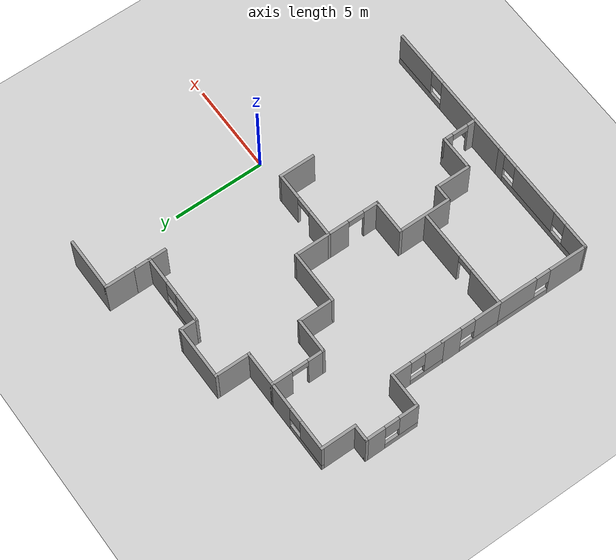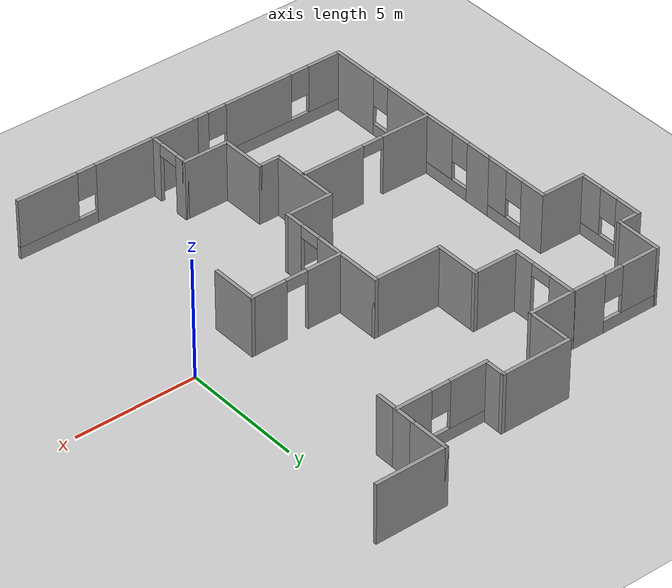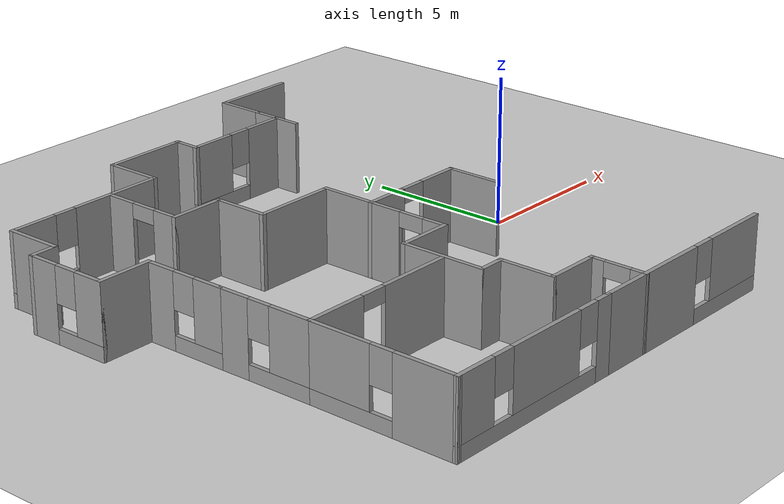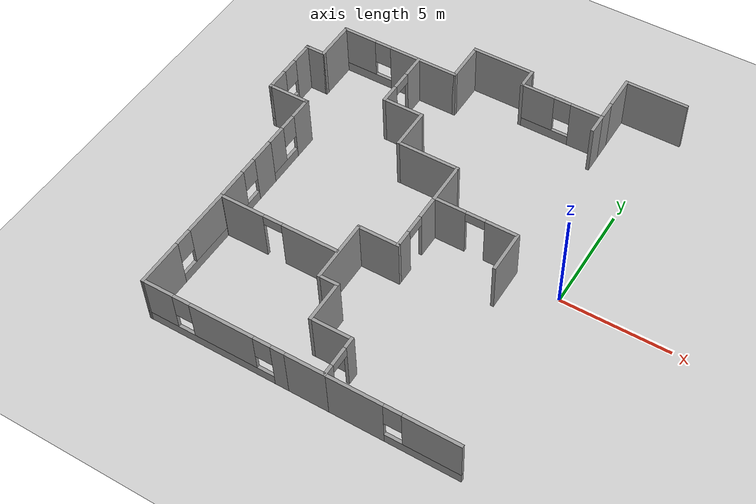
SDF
<sdf version="1.7">
 <world name="default">
  <model name="ground_plane">
   <static>1</static>
   <link name="link">
    <collision name="collision">
     <geometry><plane><normal>0 0 1</normal><size>100 100</size></plane></geometry>
     <surface><friction><ode><mu>100</mu><mu2>50</mu2></ode></friction></surface>
    </collision>
    <visual name="visual">
     <cast_shadows>0</cast_shadows>
     <geometry><plane><normal>0 0 1</normal><size>100 100</size></plane></geometry>
     <material>
      <script><uri>file://media/materials/scripts/gazebo.material</uri><name>Gazebo/Grey</name></script>
     </material>
    </visual>
   </link>
  </model>
  <model name="my_office">
   <pose>-0.02514 -0.08544 0 0 -0 0</pose>
   <link name="Wall_14">
    <collision name="Wall_14_Collision">
     <geometry><box><size>2 0.15 2.5</size></box></geometry>
     <pose>0 0 1.25 0 -0 0</pose>
    </collision>
    <visual name="Wall_14_Visual">
     <pose>0 0 1.25 0 -0 0</pose>
     <geometry><box><size>2 0.15 2.5</size></box></geometry>
     <material>
      <script><uri>file://media/materials/scripts/gazebo.material</uri><name>Gazebo/Grey</name></script>
      <ambient>1 1 1 1</ambient>
     </material>
     <meta><layer>0</layer></meta>
    </visual>
    <pose>-2.2 -0.575 0 0 -0 1.5708</pose>
   </link>
   <link name="Wall_15">
    <pose>-4.125 0.35 0 0 -0 3.14159</pose>
    <visual name="Wall_15_Visual_0">
     <pose>-1.22949 0 1.25 0 -0 0</pose>
     <geometry><box><size>1.54101 0.15 2.5</size></box></geometry>
     <material>
      <script><uri>file://media/materials/scripts/gazebo.material</uri><name>Gazebo/Grey</name></script>
      <ambient>1 1 1 1</ambient>
     </material>
     <meta><layer>0</layer></meta>
    </visual>
    <collision name="Wall_15_Collision_0">
     <geometry><box><size>1.54101 0.15 2.5</size></box></geometry>
     <pose>-1.22949 0 1.25 0 -0 0</pose>
    </collision>
    <visual name="Wall_15_Visual_1">
     <pose>1.22051 0 1.25 0 -0 0</pose>
     <geometry><box><size>1.55899 0.15 2.5</size></box></geometry>
     <material>
      <script><uri>file://media/materials/scripts/gazebo.material</uri><name>Gazebo/Grey</name></script>
      <ambient>1 1 1 1</ambient>
     </material>
     <meta><layer>0</layer></meta>
    </visual>
    <collision name="Wall_15_Collision_1">
     <geometry><box><size>1.55899 0.15 2.5</size></box></geometry>
     <pose>1.22051 0 1.25 0 -0 0</pose>
    </collision>
    <visual name="Wall_15_Visual_2">
     <pose>-0.008987 0 2.25 0 -0 0</pose>
     <geometry><box><size>0.9 0.15 0.5</size></box></geometry>
     <material>
      <script><uri>file://media/materials/scripts/gazebo.material</uri><name>Gazebo/Grey</name></script>
      <ambient>1 1 1 1</ambient>
     </material>
     <meta><layer>0</layer></meta>
    </visual>
    <collision name="Wall_15_Collision_2">
     <geometry><box><size>0.9 0.15 0.5</size></box></geometry>
     <pose>-0.008987 0 2.25 0 -0 0</pose>
    </collision>
   </link>
   <link name="Wall_16">
    <pose>-6.05 -1.075 0 0 -0 -1.5708</pose>
    <visual name="Wall_16_Visual_0">
     <pose>-0.886999 0 1.25 0 -0 0</pose>
     <geometry><box><size>1.226 0.15 2.5</size></box></geometry>
     <material>
      <script><uri>file://media/materials/scripts/gazebo.material</uri><name>Gazebo/Grey</name></script>
      <ambient>1 1 1 1</ambient>
     </material>
     <meta><layer>0</layer></meta>
    </visual>
    <collision name="Wall_16_Collision_0">
     <geometry><box><size>1.226 0.15 2.5</size></box></geometry>
     <pose>-0.886999 0 1.25 0 -0 0</pose>
    </collision>
    <visual name="Wall_16_Visual_1">
     <pose>1.063 0 1.25 0 -0 0</pose>
     <geometry><box><size>0.873997 0.15 2.5</size></box></geometry>
     <material>
      <script><uri>file://media/materials/scripts/gazebo.material</uri><name>Gazebo/Grey</name></script>
      <ambient>1 1 1 1</ambient>
     </material>
     <meta><layer>0</layer></meta>
    </visual>
    <collision name="Wall_16_Collision_1">
     <geometry><box><size>0.873997 0.15 2.5</size></box></geometry>
     <pose>1.063 0 1.25 0 -0 0</pose>
    </collision>
    <visual name="Wall_16_Visual_2">
     <pose>0.176003 0 2.25 0 -0 0</pose>
     <geometry><box><size>0.9 0.15 0.5</size></box></geometry>
     <material>
      <script><uri>file://media/materials/scripts/gazebo.material</uri><name>Gazebo/Grey</name></script>
      <ambient>1 1 1 1</ambient>
     </material>
     <meta><layer>0</layer></meta>
    </visual>
    <collision name="Wall_16_Collision_2">
     <geometry><box><size>0.9 0.15 0.5</size></box></geometry>
     <pose>0.176003 0 2.25 0 -0 0</pose>
    </collision>
   </link>
   <link name="Wall_17">
    <collision name="Wall_17_Collision">
     <geometry><box><size>2 0.15 2.5</size></box></geometry>
     <pose>0 0 1.25 0 -0 0</pose>
    </collision>
    <visual name="Wall_17_Visual">
     <pose>0 0 1.25 0 -0 0</pose>
     <geometry><box><size>2 0.15 2.5</size></box></geometry>
     <material>
      <script><uri>file://media/materials/scripts/gazebo.material</uri><name>Gazebo/Grey</name></script>
      <ambient>1 1 1 1</ambient>
     </material>
     <meta><layer>0</layer></meta>
    </visual>
    <pose>-6.975 -2.5 0 0 -0 3.14159</pose>
   </link>
   <link name="Wall_18">
    <collision name="Wall_18_Collision">
     <geometry><box><size>3 0.15 2.5</size></box></geometry>
     <pose>0 0 1.25 0 -0 0</pose>
    </collision>
    <visual name="Wall_18_Visual">
     <pose>0 0 1.25 0 -0 0</pose>
     <geometry><box><size>3 0.15 2.5</size></box></geometry>
     <material>
      <script><uri>file://media/materials/scripts/gazebo.material</uri><name>Gazebo/Grey</name></script>
      <ambient>1 1 1 1</ambient>
     </material>
     <meta><layer>0</layer></meta>
    </visual>
    <pose>-7.9 -3.925 0 0 -0 -1.5708</pose>
   </link>
   <link name="Wall_19">
    <collision name="Wall_19_Collision">
     <geometry><box><size>1 0.15 2.5</size></box></geometry>
     <pose>0 0 1.25 0 -0 0</pose>
    </collision>
    <visual name="Wall_19_Visual">
     <pose>0 0 1.25 0 -0 0</pose>
     <geometry><box><size>1 0.15 2.5</size></box></geometry>
     <material>
      <script><uri>file://media/materials/scripts/gazebo.material</uri><name>Gazebo/Grey</name></script>
      <ambient>1 1 1 1</ambient>
     </material>
     <meta><layer>0</layer></meta>
    </visual>
    <pose>-7.475 -5.35 0 0 -0 0</pose>
   </link>
   <link name="Wall_20">
    <collision name="Wall_20_Collision">
     <geometry><box><size>2 0.15 2.5</size></box></geometry>
     <pose>0 0 1.25 0 -0 0</pose>
    </collision>
    <visual name="Wall_20_Visual">
     <pose>0 0 1.25 0 -0 0</pose>
     <geometry><box><size>2 0.15 2.5</size></box></geometry>
     <material>
      <script><uri>file://media/materials/scripts/gazebo.material</uri><name>Gazebo/Grey</name></script>
      <ambient>1 1 1 1</ambient>
     </material>
     <meta><layer>0</layer></meta>
    </visual>
    <pose>-7.05 -6.275 0 0 -0 -1.5708</pose>
   </link>
   <link name="Wall_21">
    <collision name="Wall_21_Collision">
     <geometry><box><size>2 0.15 2.5</size></box></geometry>
     <pose>0 0 1.25 0 -0 0</pose>
    </collision>
    <visual name="Wall_21_Visual">
     <pose>0 0 1.25 0 -0 0</pose>
     <geometry><box><size>2 0.15 2.5</size></box></geometry>
     <material>
      <script><uri>file://media/materials/scripts/gazebo.material</uri><name>Gazebo/Grey</name></script>
      <ambient>1 1 1 1</ambient>
     </material>
     <meta><layer>0</layer></meta>
    </visual>
    <pose>-6.125 -7.2 0 0 -0 0</pose>
   </link>
   <link name="Wall_22">
    <pose>-5.2 -8.125 0 0 -0 -1.5708</pose>
    <visual name="Wall_22_Visual_0">
     <pose>-0.728709 0 1.25 0 -0 0</pose>
     <geometry><box><size>0.542581 0.15 2.5</size></box></geometry>
     <material>
      <script><uri>file://media/materials/scripts/gazebo.material</uri><name>Gazebo/Grey</name></script>
      <ambient>1 1 1 1</ambient>
     </material>
     <meta><layer>0</layer></meta>
    </visual>
    <collision name="Wall_22_Collision_0">
     <geometry><box><size>0.542581 0.15 2.5</size></box></geometry>
     <pose>-0.728709 0 1.25 0 -0 0</pose>
    </collision>
    <visual name="Wall_22_Visual_1">
     <pose>0.721291 0 1.25 0 -0 0</pose>
     <geometry><box><size>0.557419 0.15 2.5</size></box></geometry>
     <material>
      <script><uri>file://media/materials/scripts/gazebo.material</uri><name>Gazebo/Grey</name></script>
      <ambient>1 1 1 1</ambient>
     </material>
     <meta><layer>0</layer></meta>
    </visual>
    <collision name="Wall_22_Collision_1">
     <geometry><box><size>0.557419 0.15 2.5</size></box></geometry>
     <pose>0.721291 0 1.25 0 -0 0</pose>
    </collision>
    <visual name="Wall_22_Visual_2">
     <pose>-0.007419 0 2.25 0 -0 0</pose>
     <geometry><box><size>0.9 0.15 0.5</size></box></geometry>
     <material>
      <script><uri>file://media/materials/scripts/gazebo.material</uri><name>Gazebo/Grey</name></script>
      <ambient>1 1 1 1</ambient>
     </material>
     <meta><layer>0</layer></meta>
    </visual>
    <collision name="Wall_22_Collision_2">
     <geometry><box><size>0.9 0.15 0.5</size></box></geometry>
     <pose>-0.007419 0 2.25 0 -0 0</pose>
    </collision>
   </link>
   <link name="Wall_23">
    <pose>-2.275 -9.05 0 0 -0 0</pose>
    <visual name="Wall_23_Visual_0">
     <pose>-1.67725 0 1.25 0 -0 0</pose>
     <geometry><box><size>2.6455 0.15 2.5</size></box></geometry>
     <material>
      <script><uri>file://media/materials/scripts/gazebo.material</uri><name>Gazebo/Grey</name></script>
      <ambient>1 1 1 1</ambient>
     </material>
     <meta><layer>0</layer></meta>
    </visual>
    <collision name="Wall_23_Collision_0">
     <geometry><box><size>2.6455 0.15 2.5</size></box></geometry>
     <pose>-1.67725 0 1.25 0 -0 0</pose>
    </collision>
    <visual name="Wall_23_Visual_1">
     <pose>1.32275 0 0.25 0 -0 0</pose>
     <geometry><box><size>3.3545 0.15 0.5</size></box></geometry>
     <material>
      <script><uri>file://media/materials/scripts/gazebo.material</uri><name>Gazebo/Grey</name></script>
      <ambient>1 1 1 1</ambient>
     </material>
     <meta><layer>0</layer></meta>
    </visual>
    <collision name="Wall_23_Collision_1">
     <geometry><box><size>3.3545 0.15 0.5</size></box></geometry>
     <pose>1.32275 0 0.25 0 -0 0</pose>
    </collision>
    <visual name="Wall_23_Visual_2">
     <pose>1.72275 0 1.5 0 -0 0</pose>
     <geometry><box><size>2.5545 0.15 2</size></box></geometry>
     <material>
      <script><uri>file://media/materials/scripts/gazebo.material</uri><name>Gazebo/Grey</name></script>
      <ambient>1 1 1 1</ambient>
     </material>
     <meta><layer>0</layer></meta>
    </visual>
    <collision name="Wall_23_Collision_2">
     <geometry><box><size>2.5545 0.15 2</size></box></geometry>
     <pose>1.72275 0 1.5 0 -0 0</pose>
    </collision>
    <visual name="Wall_23_Visual_3">
     <pose>0.045496 0 1.9 0 -0 0</pose>
     <geometry><box><size>0.8 0.15 1.2</size></box></geometry>
     <material>
      <script><uri>file://media/materials/scripts/gazebo.material</uri><name>Gazebo/Grey</name></script>
      <ambient>1 1 1 1</ambient>
     </material>
     <meta><layer>0</layer></meta>
    </visual>
    <collision name="Wall_23_Collision_3">
     <geometry><box><size>0.8 0.15 1.2</size></box></geometry>
     <pose>0.045496 0 1.9 0 -0 0</pose>
    </collision>
   </link>
   <link name="Wall_29">
    <collision name="Wall_29_Collision">
     <geometry><box><size>2 0.15 2.5</size></box></geometry>
     <pose>0 0 1.25 0 -0 0</pose>
    </collision>
    <visual name="Wall_29_Visual">
     <pose>0 0 1.25 0 -0 0</pose>
     <geometry><box><size>2 0.15 2.5</size></box></geometry>
     <material>
      <script><uri>file://media/materials/scripts/gazebo.material</uri><name>Gazebo/Grey</name></script>
      <ambient>1 1 1 1</ambient>
     </material>
     <meta><layer>0</layer></meta>
    </visual>
    <pose>-6.05 1.275 0 0 -0 1.5708</pose>
   </link>
   <link name="Wall_30">
    <collision name="Wall_30_Collision">
     <geometry><box><size>3 0.15 2.5</size></box></geometry>
     <pose>0 0 1.25 0 -0 0</pose>
    </collision>
    <visual name="Wall_30_Visual">
     <pose>0 0 1.25 0 -0 0</pose>
     <geometry><box><size>3 0.15 2.5</size></box></geometry>
     <material>
      <script><uri>file://media/materials/scripts/gazebo.material</uri><name>Gazebo/Grey</name></script>
      <ambient>1 1 1 1</ambient>
     </material>
     <meta><layer>0</layer></meta>
    </visual>
    <pose>-7.475 2.2 0 0 -0 3.14159</pose>
   </link>
   <link name="Wall_31">
    <collision name="Wall_31_Collision">
     <geometry><box><size>2 0.15 2.5</size></box></geometry>
     <pose>0 0 1.25 0 -0 0</pose>
    </collision>
    <visual name="Wall_31_Visual">
     <pose>0 0 1.25 0 -0 0</pose>
     <geometry><box><size>2 0.15 2.5</size></box></geometry>
     <material>
      <script><uri>file://media/materials/scripts/gazebo.material</uri><name>Gazebo/Grey</name></script>
      <ambient>1 1 1 1</ambient>
     </material>
     <meta><layer>0</layer></meta>
    </visual>
    <pose>-8.9 3.125 0 0 -0 1.5708</pose>
   </link>
   <link name="Wall_34">
    <collision name="Wall_34_Collision">
     <geometry><box><size>2 0.15 2.5</size></box></geometry>
     <pose>0 0 1.25 0 -0 0</pose>
    </collision>
    <visual name="Wall_34_Visual">
     <pose>0 0 1.25 0 -0 0</pose>
     <geometry><box><size>2 0.15 2.5</size></box></geometry>
     <material>
      <script><uri>file://media/materials/scripts/gazebo.material</uri><name>Gazebo/Grey</name></script>
      <ambient>1 1 1 1</ambient>
     </material>
     <meta><layer>0</layer></meta>
    </visual>
    <pose>-9.825 4.05 0 0 -0 3.14159</pose>
   </link>
   <link name="Wall_35">
    <pose>-10.75 5.475 0 0 -0 1.5708</pose>
    <visual name="Wall_35_Visual_0">
     <pose>-1.02718 0 1.25 0 -0 0</pose>
     <geometry><box><size>0.945638 0.15 2.5</size></box></geometry>
     <material>
      <script><uri>file://media/materials/scripts/gazebo.material</uri><name>Gazebo/Grey</name></script>
      <ambient>1 1 1 1</ambient>
     </material>
     <meta><layer>0</layer></meta>
    </visual>
    <collision name="Wall_35_Collision_0">
     <geometry><box><size>0.945638 0.15 2.5</size></box></geometry>
     <pose>-1.02718 0 1.25 0 -0 0</pose>
    </collision>
    <visual name="Wall_35_Visual_1">
     <pose>0.922819 0 1.25 0 -0 0</pose>
     <geometry><box><size>1.15436 0.15 2.5</size></box></geometry>
     <material>
      <script><uri>file://media/materials/scripts/gazebo.material</uri><name>Gazebo/Grey</name></script>
      <ambient>1 1 1 1</ambient>
     </material>
     <meta><layer>0</layer></meta>
    </visual>
    <collision name="Wall_35_Collision_1">
     <geometry><box><size>1.15436 0.15 2.5</size></box></geometry>
     <pose>0.922819 0 1.25 0 -0 0</pose>
    </collision>
    <visual name="Wall_35_Visual_2">
     <pose>-0.104362 0 2.25 0 -0 0</pose>
     <geometry><box><size>0.9 0.15 0.5</size></box></geometry>
     <material>
      <script><uri>file://media/materials/scripts/gazebo.material</uri><name>Gazebo/Grey</name></script>
      <ambient>1 1 1 1</ambient>
     </material>
     <meta><layer>0</layer></meta>
    </visual>
    <collision name="Wall_35_Collision_2">
     <geometry><box><size>0.9 0.15 0.5</size></box></geometry>
     <pose>-0.104362 0 2.25 0 -0 0</pose>
    </collision>
   </link>
   <link name="Wall_36">
    <collision name="Wall_36_Collision">
     <geometry><box><size>2 0.15 2.5</size></box></geometry>
     <pose>0 0 1.25 0 -0 0</pose>
    </collision>
    <visual name="Wall_36_Visual">
     <pose>0 0 1.25 0 -0 0</pose>
     <geometry><box><size>2 0.15 2.5</size></box></geometry>
     <material>
      <script><uri>file://media/materials/scripts/gazebo.material</uri><name>Gazebo/Grey</name></script>
      <ambient>1 1 1 1</ambient>
     </material>
     <meta><layer>0</layer></meta>
    </visual>
    <pose>-9.825 6.9 0 0 -0 0</pose>
   </link>
   <link name="Wall_45">
    <collision name="Wall_45_Collision">
     <geometry><box><size>1 0.15 2.5</size></box></geometry>
     <pose>0 0 1.25 0 -0 0</pose>
    </collision>
    <visual name="Wall_45_Visual">
     <pose>0 0 1.25 0 -0 0</pose>
     <geometry><box><size>1 0.15 2.5</size></box></geometry>
     <material>
      <script><uri>file://media/materials/scripts/gazebo.material</uri><name>Gazebo/Grey</name></script>
      <ambient>1 1 1 1</ambient>
     </material>
     <meta><layer>0</layer></meta>
    </visual>
    <pose>-2.2 7.475 0 0 -0 1.5708</pose>
   </link>
   <link name="Wall_46">
    <pose>-4.125 7.9 0 0 -0 3.14159</pose>
    <visual name="Wall_46_Visual_0">
     <pose>-1.23202 0 1.25 0 -0 0</pose>
     <geometry><box><size>1.53595 0.15 2.5</size></box></geometry>
     <material>
      <script><uri>file://media/materials/scripts/gazebo.material</uri><name>Gazebo/Grey</name></script>
      <ambient>1 1 1 1</ambient>
     </material>
     <meta><layer>0</layer></meta>
    </visual>
    <collision name="Wall_46_Collision_0">
     <geometry><box><size>1.53595 0.15 2.5</size></box></geometry>
     <pose>-1.23202 0 1.25 0 -0 0</pose>
    </collision>
    <visual name="Wall_46_Visual_1">
     <pose>0.767977 0 0.25 0 -0 0</pose>
     <geometry><box><size>2.46405 0.15 0.5</size></box></geometry>
     <material>
      <script><uri>file://media/materials/scripts/gazebo.material</uri><name>Gazebo/Grey</name></script>
      <ambient>1 1 1 1</ambient>
     </material>
     <meta><layer>0</layer></meta>
    </visual>
    <collision name="Wall_46_Collision_1">
     <geometry><box><size>2.46405 0.15 0.5</size></box></geometry>
     <pose>0.767977 0 0.25 0 -0 0</pose>
    </collision>
    <visual name="Wall_46_Visual_2">
     <pose>1.16798 0 1.5 0 -0 0</pose>
     <geometry><box><size>1.66405 0.15 2</size></box></geometry>
     <material>
      <script><uri>file://media/materials/scripts/gazebo.material</uri><name>Gazebo/Grey</name></script>
      <ambient>1 1 1 1</ambient>
     </material>
     <meta><layer>0</layer></meta>
    </visual>
    <collision name="Wall_46_Collision_2">
     <geometry><box><size>1.66405 0.15 2</size></box></geometry>
     <pose>1.16798 0 1.5 0 -0 0</pose>
    </collision>
    <visual name="Wall_46_Visual_3">
     <pose>-0.064046 0 1.9 0 -0 0</pose>
     <geometry><box><size>0.8 0.15 1.2</size></box></geometry>
     <material>
      <script><uri>file://media/materials/scripts/gazebo.material</uri><name>Gazebo/Grey</name></script>
      <ambient>1 1 1 1</ambient>
     </material>
     <meta><layer>0</layer></meta>
    </visual>
    <collision name="Wall_46_Collision_3">
     <geometry><box><size>0.8 0.15 1.2</size></box></geometry>
     <pose>-0.064046 0 1.9 0 -0 0</pose>
    </collision>
   </link>
   <link name="Wall_47">
    <collision name="Wall_47_Collision">
     <geometry><box><size>1 0.15 2.5</size></box></geometry>
     <pose>0 0 1.25 0 -0 0</pose>
    </collision>
    <visual name="Wall_47_Visual">
     <pose>0 0 1.25 0 -0 0</pose>
     <geometry><box><size>1 0.15 2.5</size></box></geometry>
     <material>
      <script><uri>file://media/materials/scripts/gazebo.material</uri><name>Gazebo/Grey</name></script>
      <ambient>1 1 1 1</ambient>
     </material>
     <meta><layer>0</layer></meta>
    </visual>
    <pose>-6.05 8.325 0 0 -0 1.5708</pose>
   </link>
   <link name="Wall_48">
    <collision name="Wall_48_Collision">
     <geometry><box><size>3 0.15 2.5</size></box></geometry>
     <pose>0 0 1.25 0 -0 0</pose>
    </collision>
    <visual name="Wall_48_Visual">
     <pose>0 0 1.25 0 -0 0</pose>
     <geometry><box><size>3 0.15 2.5</size></box></geometry>
     <material>
      <script><uri>file://media/materials/scripts/gazebo.material</uri><name>Gazebo/Grey</name></script>
      <ambient>1 1 1 1</ambient>
     </material>
     <meta><layer>0</layer></meta>
    </visual>
    <pose>-7.475 8.75 0 0 -0 3.14159</pose>
   </link>
   <link name="Wall_49">
    <collision name="Wall_49_Collision">
     <geometry><box><size>2 0.15 2.5</size></box></geometry>
     <pose>0 0 1.25 0 -0 0</pose>
    </collision>
    <visual name="Wall_49_Visual">
     <pose>0 0 1.25 0 -0 0</pose>
     <geometry><box><size>2 0.15 2.5</size></box></geometry>
     <material>
      <script><uri>file://media/materials/scripts/gazebo.material</uri><name>Gazebo/Grey</name></script>
      <ambient>1 1 1 1</ambient>
     </material>
     <meta><layer>0</layer></meta>
    </visual>
    <pose>-8.9 7.825 0 0 -0 -1.5708</pose>
   </link>
   <link name="Wall_52">
    <pose>-12.675 6.9 0 0 -0 3.14159</pose>
    <visual name="Wall_52_Visual_0">
     <pose>-1.23889 0 1.25 0 -0 0</pose>
     <geometry><box><size>1.52222 0.15 2.5</size></box></geometry>
     <material>
      <script><uri>file://media/materials/scripts/gazebo.material</uri><name>Gazebo/Grey</name></script>
      <ambient>1 1 1 1</ambient>
     </material>
     <meta><layer>0</layer></meta>
    </visual>
    <collision name="Wall_52_Collision_0">
     <geometry><box><size>1.52222 0.15 2.5</size></box></geometry>
     <pose>-1.23889 0 1.25 0 -0 0</pose>
    </collision>
    <visual name="Wall_52_Visual_1">
     <pose>0.761108 0 0.25 0 -0 0</pose>
     <geometry><box><size>2.47778 0.15 0.5</size></box></geometry>
     <material>
      <script><uri>file://media/materials/scripts/gazebo.material</uri><name>Gazebo/Grey</name></script>
      <ambient>1 1 1 1</ambient>
     </material>
     <meta><layer>0</layer></meta>
    </visual>
    <collision name="Wall_52_Collision_1">
     <geometry><box><size>2.47778 0.15 0.5</size></box></geometry>
     <pose>0.761108 0 0.25 0 -0 0</pose>
    </collision>
    <visual name="Wall_52_Visual_2">
     <pose>1.16111 0 1.5 0 -0 0</pose>
     <geometry><box><size>1.67779 0.15 2</size></box></geometry>
     <material>
      <script><uri>file://media/materials/scripts/gazebo.material</uri><name>Gazebo/Grey</name></script>
      <ambient>1 1 1 1</ambient>
     </material>
     <meta><layer>0</layer></meta>
    </visual>
    <collision name="Wall_52_Collision_2">
     <geometry><box><size>1.67779 0.15 2</size></box></geometry>
     <pose>1.16111 0 1.5 0 -0 0</pose>
    </collision>
    <visual name="Wall_52_Visual_3">
     <pose>-0.077785 0 1.9 0 -0 0</pose>
     <geometry><box><size>0.8 0.15 1.2</size></box></geometry>
     <material>
      <script><uri>file://media/materials/scripts/gazebo.material</uri><name>Gazebo/Grey</name></script>
      <ambient>1 1 1 1</ambient>
     </material>
     <meta><layer>0</layer></meta>
    </visual>
    <collision name="Wall_52_Collision_3">
     <geometry><box><size>0.8 0.15 1.2</size></box></geometry>
     <pose>-0.077785 0 1.9 0 -0 0</pose>
    </collision>
   </link>
   <link name="Wall_54">
    <collision name="Wall_54_Collision">
     <geometry><box><size>2 0.15 2.5</size></box></geometry>
     <pose>0 0 1.25 0 -0 0</pose>
    </collision>
    <visual name="Wall_54_Visual">
     <pose>0 0 1.25 0 -0 0</pose>
     <geometry><box><size>2 0.15 2.5</size></box></geometry>
     <material>
      <script><uri>file://media/materials/scripts/gazebo.material</uri><name>Gazebo/Grey</name></script>
      <ambient>1 1 1 1</ambient>
     </material>
     <meta><layer>0</layer></meta>
    </visual>
    <pose>-14.6 5.975 0 0 -0 -1.5708</pose>
   </link>
   <link name="Wall_55">
    <collision name="Wall_55_Collision">
     <geometry><box><size>1 0.15 2.5</size></box></geometry>
     <pose>0 0 1.25 0 -0 0</pose>
    </collision>
    <visual name="Wall_55_Visual">
     <pose>0 0 1.25 0 -0 0</pose>
     <geometry><box><size>1 0.15 2.5</size></box></geometry>
     <material>
      <script><uri>file://media/materials/scripts/gazebo.material</uri><name>Gazebo/Grey</name></script>
      <ambient>1 1 1 1</ambient>
     </material>
     <meta><layer>0</layer></meta>
    </visual>
    <pose>-15.025 5.05 0 0 -0 3.14159</pose>
   </link>
   <link name="Wall_56">
    <pose>-15.45 3.625 0 0 -0 -1.5708</pose>
    <visual name="Wall_56_Visual_0">
     <pose>-0.941289 0 1.25 0 -0 0</pose>
     <geometry><box><size>1.11742 0.15 2.5</size></box></geometry>
     <material>
      <script><uri>file://media/materials/scripts/gazebo.material</uri><name>Gazebo/Grey</name></script>
      <ambient>1 1 1 1</ambient>
     </material>
     <meta><layer>0</layer></meta>
    </visual>
    <collision name="Wall_56_Collision_0">
     <geometry><box><size>1.11742 0.15 2.5</size></box></geometry>
     <pose>-0.941289 0 1.25 0 -0 0</pose>
    </collision>
    <visual name="Wall_56_Visual_1">
     <pose>0.558711 0 0.25 0 -0 0</pose>
     <geometry><box><size>1.88258 0.15 0.5</size></box></geometry>
     <material>
      <script><uri>file://media/materials/scripts/gazebo.material</uri><name>Gazebo/Grey</name></script>
      <ambient>1 1 1 1</ambient>
     </material>
     <meta><layer>0</layer></meta>
    </visual>
    <collision name="Wall_56_Collision_1">
     <geometry><box><size>1.88258 0.15 0.5</size></box></geometry>
     <pose>0.558711 0 0.25 0 -0 0</pose>
    </collision>
    <visual name="Wall_56_Visual_2">
     <pose>0.958711 0 1.5 0 -0 0</pose>
     <geometry><box><size>1.08258 0.15 2</size></box></geometry>
     <material>
      <script><uri>file://media/materials/scripts/gazebo.material</uri><name>Gazebo/Grey</name></script>
      <ambient>1 1 1 1</ambient>
     </material>
     <meta><layer>0</layer></meta>
    </visual>
    <collision name="Wall_56_Collision_2">
     <geometry><box><size>1.08258 0.15 2</size></box></geometry>
     <pose>0.958711 0 1.5 0 -0 0</pose>
    </collision>
    <visual name="Wall_56_Visual_3">
     <pose>0.017422 0 1.9 0 -0 0</pose>
     <geometry><box><size>0.8 0.15 1.2</size></box></geometry>
     <material>
      <script><uri>file://media/materials/scripts/gazebo.material</uri><name>Gazebo/Grey</name></script>
      <ambient>1 1 1 1</ambient>
     </material>
     <meta><layer>0</layer></meta>
    </visual>
    <collision name="Wall_56_Collision_3">
     <geometry><box><size>0.8 0.15 1.2</size></box></geometry>
     <pose>0.017422 0 1.9 0 -0 0</pose>
    </collision>
   </link>
   <link name="Wall_57">
    <collision name="Wall_57_Collision">
     <geometry><box><size>2 0.15 2.5</size></box></geometry>
     <pose>0 0 1.25 0 -0 0</pose>
    </collision>
    <visual name="Wall_57_Visual">
     <pose>0 0 1.25 0 -0 0</pose>
     <geometry><box><size>2 0.15 2.5</size></box></geometry>
     <material>
      <script><uri>file://media/materials/scripts/gazebo.material</uri><name>Gazebo/Grey</name></script>
      <ambient>1 1 1 1</ambient>
     </material>
     <meta><layer>0</layer></meta>
    </visual>
    <pose>-14.525 2.2 0 0 -0 0</pose>
   </link>
   <link name="Wall_58">
    <pose>-13.6 0.775 0 0 -0 -1.5708</pose>
    <visual name="Wall_58_Visual_0">
     <pose>-0.941423 0 1.25 0 -0 0</pose>
     <geometry><box><size>1.11715 0.15 2.5</size></box></geometry>
     <material>
      <script><uri>file://media/materials/scripts/gazebo.material</uri><name>Gazebo/Grey</name></script>
      <ambient>1 1 1 1</ambient>
     </material>
     <meta><layer>0</layer></meta>
    </visual>
    <collision name="Wall_58_Collision_0">
     <geometry><box><size>1.11715 0.15 2.5</size></box></geometry>
     <pose>-0.941423 0 1.25 0 -0 0</pose>
    </collision>
    <visual name="Wall_58_Visual_1">
     <pose>0.558577 0 0.25 0 -0 0</pose>
     <geometry><box><size>1.88285 0.15 0.5</size></box></geometry>
     <material>
      <script><uri>file://media/materials/scripts/gazebo.material</uri><name>Gazebo/Grey</name></script>
      <ambient>1 1 1 1</ambient>
     </material>
     <meta><layer>0</layer></meta>
    </visual>
    <collision name="Wall_58_Collision_1">
     <geometry><box><size>1.88285 0.15 0.5</size></box></geometry>
     <pose>0.558577 0 0.25 0 -0 0</pose>
    </collision>
    <visual name="Wall_58_Visual_2">
     <pose>0.958577 0 1.5 0 -0 0</pose>
     <geometry><box><size>1.08285 0.15 2</size></box></geometry>
     <material>
      <script><uri>file://media/materials/scripts/gazebo.material</uri><name>Gazebo/Grey</name></script>
      <ambient>1 1 1 1</ambient>
     </material>
     <meta><layer>0</layer></meta>
    </visual>
    <collision name="Wall_58_Collision_2">
     <geometry><box><size>1.08285 0.15 2</size></box></geometry>
     <pose>0.958577 0 1.5 0 -0 0</pose>
    </collision>
    <visual name="Wall_58_Visual_3">
     <pose>0.017155 0 1.9 0 -0 0</pose>
     <geometry><box><size>0.8 0.15 1.2</size></box></geometry>
     <material>
      <script><uri>file://media/materials/scripts/gazebo.material</uri><name>Gazebo/Grey</name></script>
      <ambient>1 1 1 1</ambient>
     </material>
     <meta><layer>0</layer></meta>
    </visual>
    <collision name="Wall_58_Collision_3">
     <geometry><box><size>0.8 0.15 1.2</size></box></geometry>
     <pose>0.017155 0 1.9 0 -0 0</pose>
    </collision>
   </link>
   <link name="Wall_60">
    <pose>-10.7774 -3.98619 0 0 -0 3.14159</pose>
    <visual name="Wall_60_Visual_0">
     <pose>-1.52801 0 1.25 0 -0 0</pose>
     <geometry><box><size>2.69399 0.15 2.5</size></box></geometry>
     <material>
      <script><uri>file://media/materials/scripts/gazebo.material</uri><name>Gazebo/Grey</name></script>
      <ambient>1 1 1 1</ambient>
     </material>
     <meta><layer>0</layer></meta>
    </visual>
    <collision name="Wall_60_Collision_0">
     <geometry><box><size>2.69399 0.15 2.5</size></box></geometry>
     <pose>-1.52801 0 1.25 0 -0 0</pose>
    </collision>
    <visual name="Wall_60_Visual_1">
     <pose>1.79699 0 1.25 0 -0 0</pose>
     <geometry><box><size>2.15601 0.15 2.5</size></box></geometry>
     <material>
      <script><uri>file://media/materials/scripts/gazebo.material</uri><name>Gazebo/Grey</name></script>
      <ambient>1 1 1 1</ambient>
     </material>
     <meta><layer>0</layer></meta>
    </visual>
    <collision name="Wall_60_Collision_1">
     <geometry><box><size>2.15601 0.15 2.5</size></box></geometry>
     <pose>1.79699 0 1.25 0 -0 0</pose>
    </collision>
    <visual name="Wall_60_Visual_2">
     <pose>0.268987 0 2.25 0 -0 0</pose>
     <geometry><box><size>0.9 0.15 0.5</size></box></geometry>
     <material>
      <script><uri>file://media/materials/scripts/gazebo.material</uri><name>Gazebo/Grey</name></script>
      <ambient>1 1 1 1</ambient>
     </material>
     <meta><layer>0</layer></meta>
    </visual>
    <collision name="Wall_60_Collision_2">
     <geometry><box><size>0.9 0.15 0.5</size></box></geometry>
     <pose>0.268987 0 2.25 0 -0 0</pose>
    </collision>
   </link>
   <link name="Wall_62">
    <pose>-13.6 -2.325 0 0 -0 -1.5708</pose>
    <visual name="Wall_62_Visual_0">
     <pose>-1.17061 0 1.25 0 -0 0</pose>
     <geometry><box><size>1.15878 0.15 2.5</size></box></geometry>
     <material>
      <script><uri>file://media/materials/scripts/gazebo.material</uri><name>Gazebo/Grey</name></script>
      <ambient>1 1 1 1</ambient>
     </material>
     <meta><layer>0</layer></meta>
    </visual>
    <collision name="Wall_62_Collision_0">
     <geometry><box><size>1.15878 0.15 2.5</size></box></geometry>
     <pose>-1.17061 0 1.25 0 -0 0</pose>
    </collision>
    <visual name="Wall_62_Visual_1">
     <pose>0.579391 0 0.25 0 -0 0</pose>
     <geometry><box><size>2.34122 0.15 0.5</size></box></geometry>
     <material>
      <script><uri>file://media/materials/scripts/gazebo.material</uri><name>Gazebo/Grey</name></script>
      <ambient>1 1 1 1</ambient>
     </material>
     <meta><layer>0</layer></meta>
    </visual>
    <collision name="Wall_62_Collision_1">
     <geometry><box><size>2.34122 0.15 0.5</size></box></geometry>
     <pose>0.579391 0 0.25 0 -0 0</pose>
    </collision>
    <visual name="Wall_62_Visual_2">
     <pose>0.979391 0 1.5 0 -0 0</pose>
     <geometry><box><size>1.54122 0.15 2</size></box></geometry>
     <material>
      <script><uri>file://media/materials/scripts/gazebo.material</uri><name>Gazebo/Grey</name></script>
      <ambient>1 1 1 1</ambient>
     </material>
     <meta><layer>0</layer></meta>
    </visual>
    <collision name="Wall_62_Collision_2">
     <geometry><box><size>1.54122 0.15 2</size></box></geometry>
     <pose>0.979391 0 1.5 0 -0 0</pose>
    </collision>
    <visual name="Wall_62_Visual_3">
     <pose>-0.191218 0 1.9 0 -0 0</pose>
     <geometry><box><size>0.8 0.15 1.2</size></box></geometry>
     <material>
      <script><uri>file://media/materials/scripts/gazebo.material</uri><name>Gazebo/Grey</name></script>
      <ambient>1 1 1 1</ambient>
     </material>
     <meta><layer>0</layer></meta>
    </visual>
    <collision name="Wall_62_Collision_3">
     <geometry><box><size>0.8 0.15 1.2</size></box></geometry>
     <pose>-0.191218 0 1.9 0 -0 0</pose>
    </collision>
   </link>
   <link name="Wall_64">
    <collision name="Wall_64_Collision">
     <geometry><box><size>2 0.15 2.5</size></box></geometry>
     <pose>0 0 1.25 0 -0 0</pose>
    </collision>
    <visual name="Wall_64_Visual">
     <pose>0 0 1.25 0 -0 0</pose>
     <geometry><box><size>2 0.15 2.5</size></box></geometry>
     <material>
      <script><uri>file://media/materials/scripts/gazebo.material</uri><name>Gazebo/Grey</name></script>
      <ambient>1 1 1 1</ambient>
     </material>
     <meta><layer>0</layer></meta>
    </visual>
    <pose>-6.125 -9.05 0 0 -0 3.14159</pose>
   </link>
   <link name="Wall_65">
    <pose>-10.35 -9.05 0 0 -0 3.14159</pose>
    <visual name="Wall_65_Visual_0">
     <pose>-3.05612 0 1.25 0 -0 0</pose>
     <geometry><box><size>0.637758 0.15 2.5</size></box></geometry>
     <material>
      <script><uri>file://media/materials/scripts/gazebo.material</uri><name>Gazebo/Grey</name></script>
      <ambient>1 1 1 1</ambient>
     </material>
     <meta><layer>0</layer></meta>
    </visual>
    <collision name="Wall_65_Collision_0">
     <geometry><box><size>0.637758 0.15 2.5</size></box></geometry>
     <pose>-3.05612 0 1.25 0 -0 0</pose>
    </collision>
    <visual name="Wall_65_Visual_1">
     <pose>0.318879 0 0.25 0 -0 0</pose>
     <geometry><box><size>6.11224 0.15 0.5</size></box></geometry>
     <material>
      <script><uri>file://media/materials/scripts/gazebo.material</uri><name>Gazebo/Grey</name></script>
      <ambient>1 1 1 1</ambient>
     </material>
     <meta><layer>0</layer></meta>
    </visual>
    <collision name="Wall_65_Collision_1">
     <geometry><box><size>6.11224 0.15 0.5</size></box></geometry>
     <pose>0.318879 0 0.25 0 -0 0</pose>
    </collision>
    <visual name="Wall_65_Visual_2">
     <pose>-0.44427 0 1.5 0 -0 0</pose>
     <geometry><box><size>2.98595 0.15 2</size></box></geometry>
     <material>
      <script><uri>file://media/materials/scripts/gazebo.material</uri><name>Gazebo/Grey</name></script>
      <ambient>1 1 1 1</ambient>
     </material>
     <meta><layer>0</layer></meta>
    </visual>
    <collision name="Wall_65_Collision_2">
     <geometry><box><size>2.98595 0.15 2</size></box></geometry>
     <pose>-0.44427 0 1.5 0 -0 0</pose>
    </collision>
    <visual name="Wall_65_Visual_3">
     <pose>2.61185 0 1.5 0 -0 0</pose>
     <geometry><box><size>1.5263 0.15 2</size></box></geometry>
     <material>
      <script><uri>file://media/materials/scripts/gazebo.material</uri><name>Gazebo/Grey</name></script>
      <ambient>1 1 1 1</ambient>
     </material>
     <meta><layer>0</layer></meta>
    </visual>
    <collision name="Wall_65_Collision_3">
     <geometry><box><size>1.5263 0.15 2</size></box></geometry>
     <pose>2.61185 0 1.5 0 -0 0</pose>
    </collision>
    <visual name="Wall_65_Visual_4">
     <pose>-2.33724 0 1.9 0 -0 0</pose>
     <geometry><box><size>0.8 0.15 1.2</size></box></geometry>
     <material>
      <script><uri>file://media/materials/scripts/gazebo.material</uri><name>Gazebo/Grey</name></script>
      <ambient>1 1 1 1</ambient>
     </material>
     <meta><layer>0</layer></meta>
    </visual>
    <collision name="Wall_65_Collision_4">
     <geometry><box><size>0.8 0.15 1.2</size></box></geometry>
     <pose>-2.33724 0 1.9 0 -0 0</pose>
    </collision>
    <visual name="Wall_65_Visual_5">
     <pose>1.4487 0 1.9 0 -0 0</pose>
     <geometry><box><size>0.8 0.15 1.2</size></box></geometry>
     <material>
      <script><uri>file://media/materials/scripts/gazebo.material</uri><name>Gazebo/Grey</name></script>
      <ambient>1 1 1 1</ambient>
     </material>
     <meta><layer>0</layer></meta>
    </visual>
    <collision name="Wall_65_Collision_5">
     <geometry><box><size>0.8 0.15 1.2</size></box></geometry>
     <pose>1.4487 0 1.9 0 -0 0</pose>
    </collision>
   </link>
   <link name="Wall_66">
    <pose>-13.625 -6.525 0 0 -0 1.5609</pose>
    <visual name="Wall_66_Visual_0">
     <pose>-1.51025 0 1.25 0 -0 0</pose>
     <geometry><box><size>2.17975 0.15 2.5</size></box></geometry>
     <material>
      <script><uri>file://media/materials/scripts/gazebo.material</uri><name>Gazebo/Grey</name></script>
      <ambient>1 1 1 1</ambient>
     </material>
     <meta><layer>0</layer></meta>
    </visual>
    <collision name="Wall_66_Collision_0">
     <geometry><box><size>2.17975 0.15 2.5</size></box></geometry>
     <pose>-1.51025 0 1.25 0 -0 0</pose>
    </collision>
    <visual name="Wall_66_Visual_1">
     <pose>1.08987 0 0.25 0 -0 0</pose>
     <geometry><box><size>3.0205 0.15 0.5</size></box></geometry>
     <material>
      <script><uri>file://media/materials/scripts/gazebo.material</uri><name>Gazebo/Grey</name></script>
      <ambient>1 1 1 1</ambient>
     </material>
     <meta><layer>0</layer></meta>
    </visual>
    <collision name="Wall_66_Collision_1">
     <geometry><box><size>3.0205 0.15 0.5</size></box></geometry>
     <pose>1.08987 0 0.25 0 -0 0</pose>
    </collision>
    <visual name="Wall_66_Visual_2">
     <pose>1.48987 0 1.5 0 -0 0</pose>
     <geometry><box><size>2.2205 0.15 2</size></box></geometry>
     <material>
      <script><uri>file://media/materials/scripts/gazebo.material</uri><name>Gazebo/Grey</name></script>
      <ambient>1 1 1 1</ambient>
     </material>
     <meta><layer>0</layer></meta>
    </visual>
    <collision name="Wall_66_Collision_2">
     <geometry><box><size>2.2205 0.15 2</size></box></geometry>
     <pose>1.48987 0 1.5 0 -0 0</pose>
    </collision>
    <visual name="Wall_66_Visual_3">
     <pose>-0.020375 0 1.9 0 -0 0</pose>
     <geometry><box><size>0.8 0.15 1.2</size></box></geometry>
     <material>
      <script><uri>file://media/materials/scripts/gazebo.material</uri><name>Gazebo/Grey</name></script>
      <ambient>1 1 1 1</ambient>
     </material>
     <meta><layer>0</layer></meta>
    </visual>
    <collision name="Wall_66_Collision_3">
     <geometry><box><size>0.8 0.15 1.2</size></box></geometry>
     <pose>-0.020375 0 1.9 0 -0 0</pose>
    </collision>
   </link>
   <link name="Wall_68">
    <collision name="Wall_68_Collision">
     <geometry><box><size>1 0.15 2.5</size></box></geometry>
     <pose>0 0 1.25 0 -0 0</pose>
    </collision>
    <visual name="Wall_68_Visual">
     <pose>0 0 1.25 0 -0 0</pose>
     <geometry><box><size>1 0.15 2.5</size></box></geometry>
     <material>
      <script><uri>file://media/materials/scripts/gazebo.material</uri><name>Gazebo/Grey</name></script>
      <ambient>1 1 1 1</ambient>
     </material>
     <meta><layer>0</layer></meta>
    </visual>
    <pose>-2.2 8.325 0 0 -0 1.5708</pose>
   </link>
   <link name="Wall_69">
    <collision name="Wall_69_Collision">
     <geometry><box><size>1.75 0.15 2.5</size></box></geometry>
     <pose>0 0 1.25 0 -0 0</pose>
    </collision>
    <visual name="Wall_69_Visual">
     <pose>0 0 1.25 0 -0 0</pose>
     <geometry><box><size>1.75 0.15 2.5</size></box></geometry>
     <material>
      <script><uri>file://media/materials/scripts/gazebo.material</uri><name>Gazebo/Grey</name></script>
      <ambient>1 1 1 1</ambient>
     </material>
     <meta><layer>0</layer></meta>
    </visual>
    <pose>-2.2 9.55 0 0 -0 1.5708</pose>
   </link>
   <link name="Wall_70">
    <collision name="Wall_70_Collision">
     <geometry><box><size>3 0.15 2.5</size></box></geometry>
     <pose>0 0 1.25 0 -0 0</pose>
    </collision>
    <visual name="Wall_70_Visual">
     <pose>0 0 1.25 0 -0 0</pose>
     <geometry><box><size>3 0.15 2.5</size></box></geometry>
     <material>
      <script><uri>file://media/materials/scripts/gazebo.material</uri><name>Gazebo/Grey</name></script>
      <ambient>1 1 1 1</ambient>
     </material>
     <meta><layer>0</layer></meta>
    </visual>
    <pose>-0.775 10.35 0 0 -0 0</pose>
   </link>
   <static>1</static>
  </model>
 </world>
</sdf>
